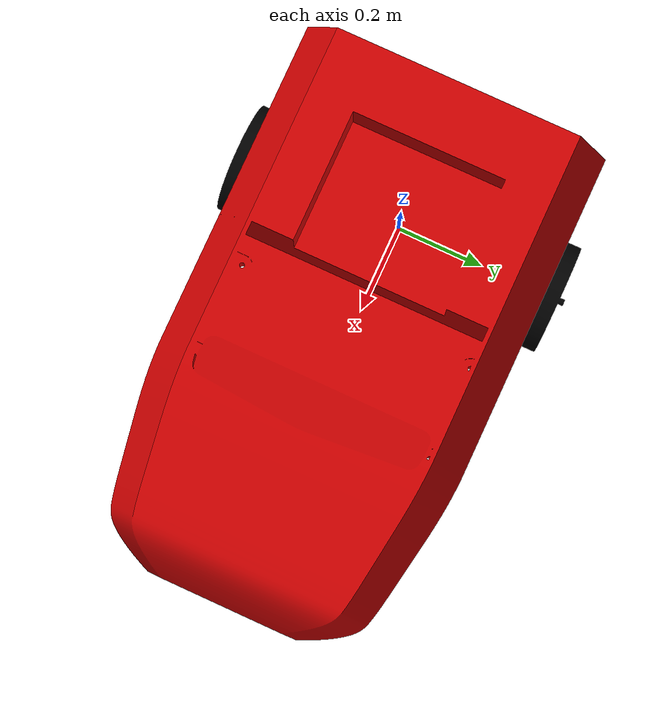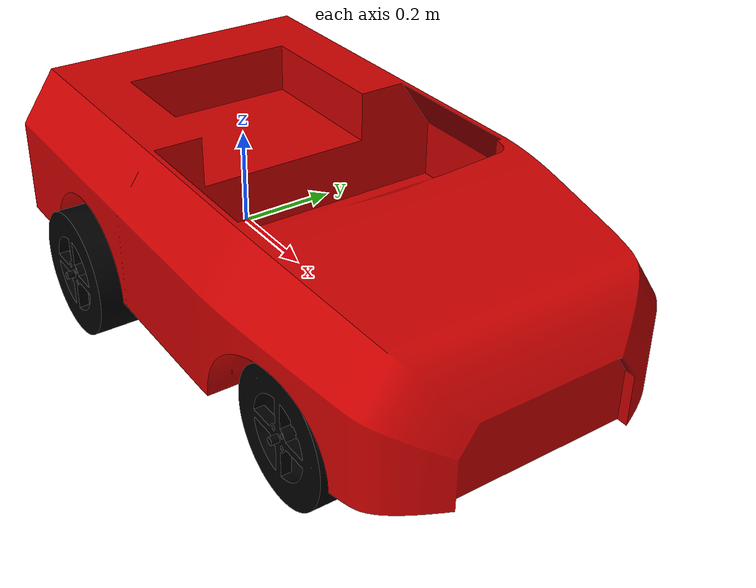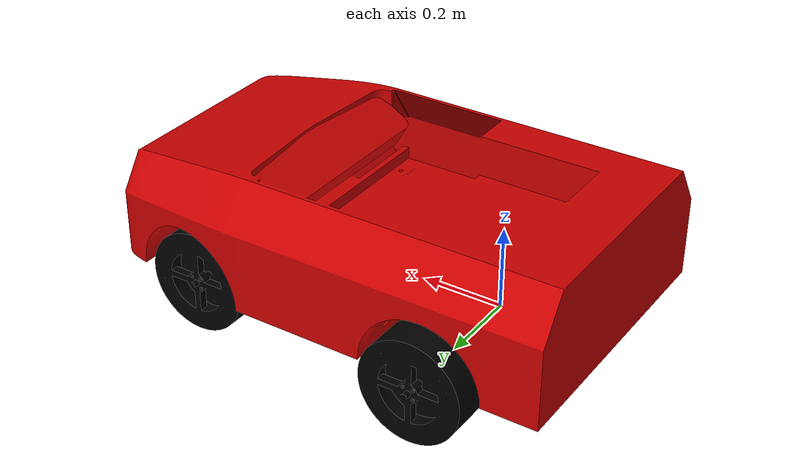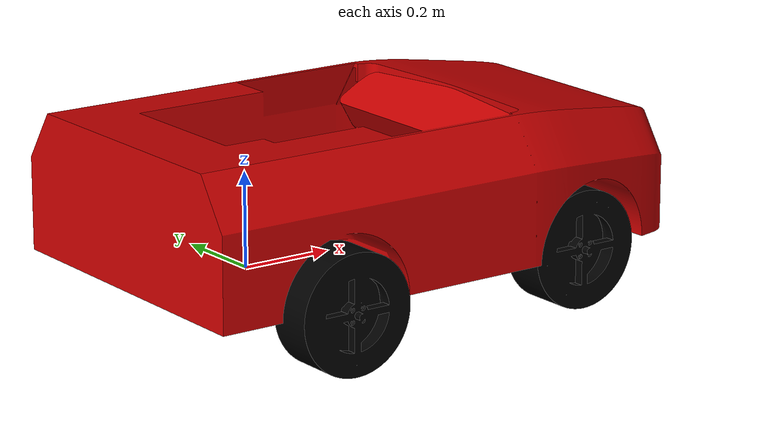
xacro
<?xml version="1.0" ?>

<robot name="democar">

  <material name="black">
    <color rgba="0.0 0.0 0.0 1.0"/>
  </material>

  <material name="dark">
    <color rgba="0.3 0.3 0.3 1.0"/>
  </material>
  <material name="light_black">
    <color rgba="0.4 0.4 0.4 1.0"/>
  </material>

  <material name="blue">
    <color rgba="0.0 0.0 0.8 1.0"/>
  </material>

  <material name="green">
   <color rgba="0.0 0.8 0.0 1.0"/>
  </material>

  <material name="grey">
   <color rgba="0.5 0.5 0.5 1.0"/>
  </material>

  <material name="orange">
    <color rgba="${255/255} ${108/255} ${10/255} 1.0"/>
  </material>

  <material name="brown">
    <color rgba="${222/255} ${207/255} ${195/255} 1.0"/>
  </material>

  <material name="red">
    <color rgba="0.8 0.0 0.0 1.0"/>
  </material>

  <material name="white">
    <color rgba="1.0 1.0 1.0 1.0"/>
  </material>
  <material name="silver">
    <color rgba="0.700 0.700 0.700 1.000"/>
  </material>

  <link name="base_footprint" />

  <link name="base_link">
    <inertial>
      <origin rpy="0 0 0" xyz="0.08610442944117125 -0.0010181684635799757 0.03851437758777222"/>
      <mass value="2.9675633650363595"/>
      <inertia ixx="0.011642" ixy="0.000148" ixz="0.000342" iyy="0.035651" iyz="-9.3e-05" izz="0.038255"/>
    </inertial>
    <visual>
      <origin rpy="0 0 0" xyz="0 0 0"/>
      <geometry>
        <mesh filename="package://democar/meshes/body.stl" scale="0.001 0.001 0.001"/>
      </geometry>
      <material name="red"/>
    </visual>
    <collision>
      <origin rpy="0 0 0" xyz="0 0 0"/>
      <geometry>
        <mesh filename="package://democar/meshes/body.stl" scale="0.001 0.001 0.001"/>
      </geometry>
      <material name="red"/>
    </collision>
  </link>

  <joint name="base_footprint_joint" type="fixed">
    <parent link="base_footprint"/>
    <child link="base_link"/>
    <origin xyz="0 0 0" rpy="0 0 0"/>
  </joint>

  <link name="lf_steering_hinge_link">
    <inertial>
      <origin rpy="0 0 0" xyz="0 0 0"/>
      <mass value="0.100"/>
      <inertia ixx="4E-06" ixy="0" ixz="0" iyy="4E-06" iyz="0" izz="4E-06"/>
    </inertial>
    <visual>
      <origin rpy="0 0 0" xyz="0 0 0"/>
      <geometry>
        <box size="0.005 0.005 0.005"/>
      </geometry>
    </visual>
  </link>
  <joint name="lf_steering_hinge_joint" type="revolute">
    <origin rpy="0 1.5708 0" xyz="0.630 0.200 0"/>
    <parent link="base_link"/>
    <child link="lf_steering_hinge_link"/>
    <axis xyz="-1 0 0"/>
    <limit effort="10" lower="-0.7853" upper="0.7853" velocity="100"/>
  </joint>
  <link name="lf_wheel_link">
    <inertial>
      <origin rpy="0 0 0" xyz="0.0 -1.4645191273516483e-15 1.0536108829867972e-17"/>
      <mass value="0.20069792517970372"/>
      <inertia ixx="0.00025" ixy="0.0" ixz="-0.0" iyy="0.00014" iyz="0.0" izz="0.00014"/>
    </inertial>
    <visual>
      <origin rpy="0 0 0" xyz="0 0 0"/>
      <geometry>
        <mesh filename="package://democar/meshes/wheel.stl" scale="0.001 0.001 0.001"/>
      </geometry>
      <material name="black"/>
    </visual>
    <collision>
      <origin rpy="0 0 0" xyz="0 0 0"/>
      <geometry>
        <mesh filename="package://democar/meshes/wheel.stl" scale="0.001 0.001 0.001"/>
      </geometry>
      <material name="black"/>
    </collision>
  </link>
  <joint name="lf_wheel_joint" type="continuous">
    <origin rpy="0 0 1.5707" xyz="0.0 0.0 0.0"/>
    <parent link="lf_steering_hinge_link"/>
    <child link="lf_wheel_link"/>
    <axis xyz="1 0 0"/>
    <limit effort="10" velocity="100"/>
  </joint>
  <link name="rf_steering_hinge_link">
    <inertial>
      <origin rpy="0 0 0" xyz="0 0 0"/>
      <mass value="0.100"/>
      <inertia ixx="4E-06" ixy="0" ixz="0" iyy="4E-06" iyz="0" izz="4E-06"/>
    </inertial>
    <visual>
      <origin rpy="0 0 0" xyz="0 0 0"/>
      <geometry>
        <box size="0.005 0.005 0.005"/>
      </geometry>
    </visual>
  </link>
  <joint name="rf_steering_hinge_joint" type="revolute">
    <origin rpy="0 1.5708 0" xyz="0.630 -0.200 0"/>
    <parent link="base_link"/>
    <child link="rf_steering_hinge_link"/>
    <axis xyz="-1 0 0"/>
    <limit effort="10" lower="-0.7853" upper="0.7853" velocity="100"/>
  </joint>
  <link name="rf_wheel_link">
    <inertial>
      <origin rpy="0 0 0" xyz="0.0 -1.4645191273516483e-15 1.0536108829867972e-17"/>
      <mass value="0.20069792517970372"/>
      <inertia ixx="0.00025" ixy="0.0" ixz="-0.0" iyy="0.00014" iyz="0.0" izz="0.00014"/>
    </inertial>
    <visual>
      <origin rpy="0 0 0" xyz="0 0 0"/>
      <geometry>
        <mesh filename="package://democar/meshes/rwheel.stl" scale="0.001 0.001 0.001"/>
      </geometry>
      <material name="black"/>
    </visual>
    <collision>
      <origin rpy="0 0 0" xyz="0 0 0"/>
      <geometry>
        <mesh filename="package://democar/meshes/rwheel.stl" scale="0.001 0.001 0.001"/>
      </geometry>
      <material name="black"/>
    </collision>
  </link>
  <joint name="rf_wheel_joint" type="continuous">
    <origin rpy="0 0 1.5707" xyz="0.0 0.0 0.0"/>
    <parent link="rf_steering_hinge_link"/>
    <child link="rf_wheel_link"/>
    <axis xyz="1 0 0"/>
    <limit effort="10" velocity="100"/>
  </joint>
  <link name="lr_wheel_link">
    <inertial>
      <origin rpy="0 0 0" xyz="0.0 -1.4645191273516483e-15 1.0536108829867972e-17"/>
      <mass value="0.20069792517970372"/>
      <inertia ixx="0.00025" ixy="0.0" ixz="-0.0" iyy="0.00014" iyz="0.0" izz="0.00014"/>
    </inertial>
    <visual>
      <origin rpy="0 0 0" xyz="0 0 0"/>
      <geometry>
        <mesh filename="package://democar/meshes/wheel.stl" scale="0.001 0.001 0.001"/>
      </geometry>
      <material name="black"/>
    </visual>
    <collision>
      <origin rpy="0 0 0" xyz="0 0 0"/>
      <geometry>
        <mesh filename="package://democar/meshes/wheel.stl" scale="0.001 0.001 0.001"/>
      </geometry>
      <material name="black"/>
    </collision>
  </link>
  <joint name="lr_wheel_joint" type="continuous">
    <origin rpy="0 0 1.5707" xyz="0.0 0.280 0.0"/>
    <parent link="base_link"/>
    <child link="lr_wheel_link"/>
    <axis xyz="1 0 0"/>
  </joint>
  <link name="rr_wheel_link">
    <inertial>
      <origin rpy="0 0 0" xyz="0.0 -1.4645191273516483e-15 1.0536108829867972e-17"/>
      <mass value="0.20069792517970372"/>
      <inertia ixx="0.00025" ixy="0.0" ixz="-0.0" iyy="0.00014" iyz="0.0" izz="0.00014"/>
    </inertial>
    <visual>
      <origin rpy="0 0 0" xyz="0 0 0"/>
      <geometry>
        <mesh filename="package://democar/meshes/rwheel.stl" scale="0.001 0.001 0.001"/>
      </geometry>
      <material name="black"/>
    </visual>
    <collision>
      <origin rpy="0 0 0" xyz="0 0 0"/>
      <geometry>
        <mesh filename="package://democar/meshes/rwheel.stl" scale="0.001 0.001 0.001"/>
      </geometry>
      <material name="black"/>
    </collision>
  </link>
  <joint name="rr_wheel_joint" type="continuous">
    <origin rpy="0 0 1.5707" xyz="0.0 -0.280 0.0"/>
    <parent link="base_link"/>
    <child link="rr_wheel_link"/>
    <axis xyz="1 0 0"/>
  </joint>

</robot>
